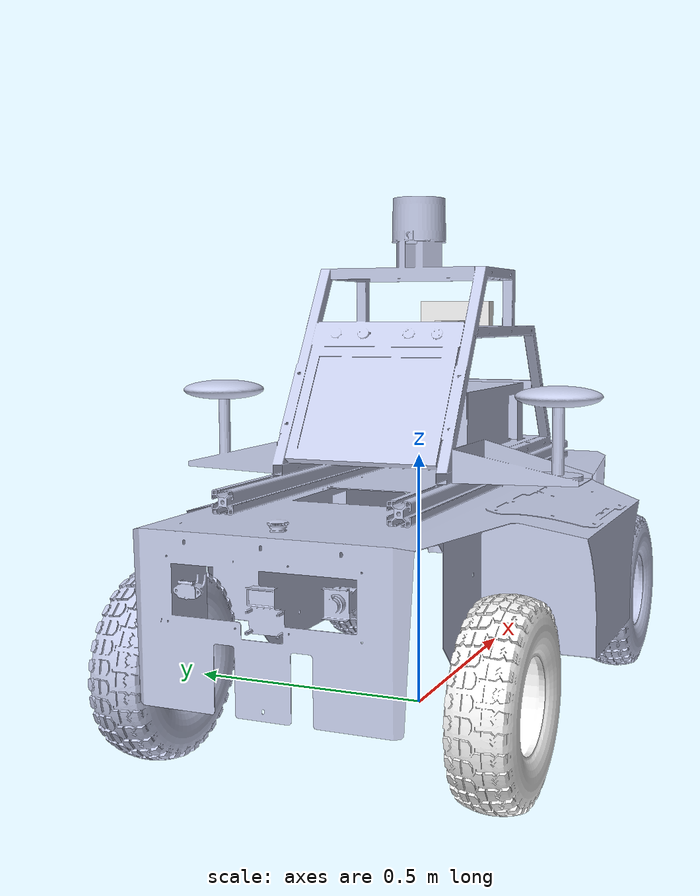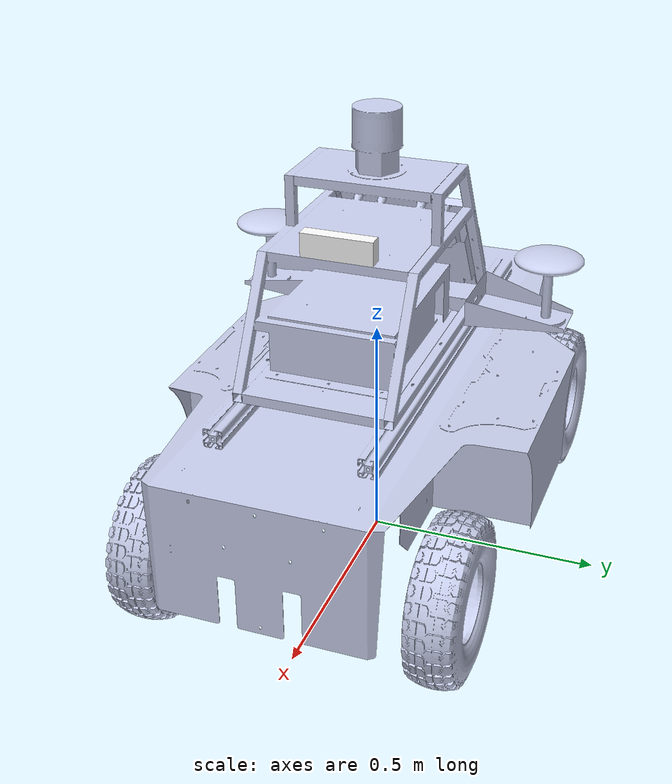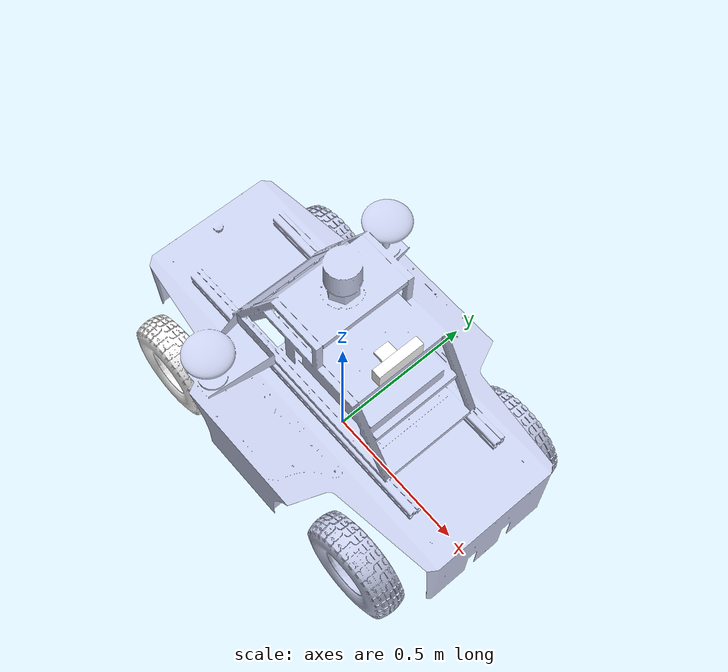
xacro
<robot name="mycar" xmlns:xacro="http://wiki.ros.org/xacro">
<gazebo>
    <plugin name="gazebo_ros_control"  filename="libgazebo_ros_control.so">
      <robotSimType>steer_bot_hardware_gazebo/SteerBotHardwareGazebo</robotSimType>
      <legacyModeNS>false</legacyModeNS>
    </plugin>
  </gazebo>
  <link
    name="base_link">
    <inertial>
      <origin
        xyz="-0.0070857 -0.00022102 0.54657"
        rpy="0 0 0" />
      <mass
        value="15.051" />
      <inertia
        ixx="0.11965"
        ixy="-1.6769E-06"
        ixz="-0.0034836"
        iyy="0.29664"
        iyz="-2.1065E-06"
        izz="0.36527" />
    </inertial>
    <visual>
      <origin
        xyz="0 0 0"
        rpy="0 0 0" />
      <geometry>
        <mesh
          filename="package://test9/meshes/base_link.STL" />
      </geometry>
      <material
        name="">
        <color
          rgba="0.79216 0.81961 0.93333 1" />
      </material>
    </visual>
    <collision>
      <origin
        xyz="0 0 0"
        rpy="0 0 0" />
      <geometry>
        <mesh
          filename="package://test9/meshes/base_link.STL" />
      </geometry>
    </collision>
  </link>
  <link
    name="front_steer_link">
    <inertial>
      <origin
        xyz="1.1102E-16 -1.3587E-18 -0.000375"
        rpy="0 0 0" />
      <mass
        value="2.0944E-06" />
      <inertia
        ixx="5.4323E-13"
        ixy="-1.0771E-28"
        ixz="-1.0797E-27"
        iyy="5.4323E-13"
        iyz="1.0693E-27"
        izz="8.3776E-13" />
    </inertial>
    <visual>
      <origin
        xyz="0 0 0"
        rpy="0 0 0" />
      <geometry>
        <mesh
          filename="package://test9/meshes/front_steer_link.STL" />
      </geometry>
      <material
        name="">
        <color
          rgba="1 1 1 1" />
      </material>
    </visual>
    <collision>
      <origin
        xyz="0 0 0"
        rpy="0 0 0" />
      <geometry>
        <mesh
          filename="package://test9/meshes/front_steer_link.STL" />
      </geometry>
    </collision>
  </link>
  <joint
    name="front_steer_joint"
    type="revolute">
    <origin
      xyz="0.42 0 0"
      rpy="0 0 0" />
    <parent
      link="base_link" />
    <child
      link="front_steer_link" />
    <axis
      xyz="0 0 1" />
    <limit
      lower="-0.72"
      upper="0.72"
      effort="0"
      velocity="0" />
  </joint>
  <link
    name="front_steer_left_link">
    <inertial>
      <origin xyz="9.44636555644252E-08 -0.000295273745285485 -8.13046296954667E-11" rpy="0 0 0" />
      <mass value="0.296315811300368" />
      <inertia
        ixx="0.000374692013709393"
        ixy="-9.17172260383823E-08"
        ixz="-2.43187512356516E-12"
        iyy="0.000661029987747155"
        iyz="1.9736939507106E-13"
        izz="0.000374691963930348" />
    </inertial>
   <visual>
     <geometry>
       <cylinder length="0.001" radius="0.005"/>
     </geometry>
     <origin rpy="0 0 0"  xyz="0 0 0" />
   </visual>
    <collision>
      <origin xyz="0 0 0" rpy="0 0 0" />
      <geometry>
       <cylinder length="0.001" radius="0.005"/>
      </geometry>
    </collision>

  </link>
  <joint
    name="front_steer_left_joint"
    type="revolute">
    <origin rpy="0 0 0"  xyz="0.42 0.3 0.26937" />
    <parent link="base_link" />
    <child link="front_steer_left_link" />
    <axis xyz="0 0 1" />  <!-- charge steer direction default is 0 0 1-->
    <limit lower="-0.61" upper="0.61" effort="0" velocity="0" />
  </joint>
  <link
    name="front_left_wheel_link">
    <inertial>
      <origin
        xyz="-1.6252E-08 1.9746E-07 -4.9513E-09"
        rpy="0 0 0" />
      <mass
        value="2.3611" />
      <inertia
        ixx="0.025953"
        ixy="3.9277E-10"
        ixz="-1.096E-12"
        iyy="0.045436"
        iyz="9.5777E-09"
        izz="0.025953" />
    </inertial>
    <visual>
      <origin
        xyz="0 0 0"
        rpy="0 0 0" />
      <geometry>
        <mesh
          filename="package://test9/meshes/front_left_wheel_link.STL" />
      </geometry>
      <material
        name="">
        <color
          rgba="0.79216 0.81961 0.93333 1" />
      </material>
    </visual>
    <collision>
      <origin
        xyz="0 0 0"
        rpy="0 0 0" />
      <geometry>
        <mesh
          filename="package://test9/meshes/front_left_wheel_link.STL" />
      </geometry>
    </collision>
  </link>
  <joint
    name="front_left_wheel_joint"
    type="continuous">
    <origin
      xyz="0 0 -0.1"
      rpy="0 0 0" />
    <parent
      link="front_steer_left_link" />
    <child
      link="front_left_wheel_link" />
    <axis
      xyz="0 1 0" />
  </joint>
  <link
    name="front_steer_right_link">
    <inertial>
      <origin xyz="9.44636555644252E-08 -0.000295273745285485 -8.13046296954667E-11" rpy="0 0 0" />
      <mass value="0.296315811300368" />
      <inertia
        ixx="0.000374692013709393"
        ixy="-9.17172260383823E-08"
        ixz="-2.43187512356516E-12"
        iyy="0.000661029987747155"
        iyz="1.9736939507106E-13"
        izz="0.000374691963930348" />
    </inertial>
   <visual>
     <geometry>
       <cylinder length="0.001" radius="0.005"/>
     </geometry>
     <origin rpy="0 0 0"  xyz="0 0 0" />
     <material name="">
          <color rgba="0.792156862745098 0.819607843137255 0.933333333333333 1" />
     </material>
   </visual>
   <collision>
      <origin
        xyz="0 0 0"
        rpy="0 0 0" />
      <geometry>
       <cylinder length="0.001" radius="0.005"/>
      </geometry>
    </collision>

  </link>
  <joint
    name="front_steer_right_joint"
    type="revolute">
    <origin rpy="0 0 0"  xyz="0.42 -0.31 0.26937" />
    <parent link="base_link" />
    <child link="front_steer_right_link" />
    <axis xyz="0 0 1" />     <!-- charge steer direction default is 0 0 1-->
    <limit lower="-0.61" upper="0.61" effort="0" velocity="0" />
  </joint>
  <link
    name="front_right_wheel_link">
    <inertial>
      <origin
        xyz="1.6252E-08 -1.9746E-07 -4.9515E-09"
        rpy="0 0 0" />
      <mass
        value="2.3611" />
      <inertia
        ixx="0.025953"
        ixy="3.9279E-10"
        ixz="9.4373E-13"
        iyy="0.045436"
        iyz="-9.5777E-09"
        izz="0.025953" />
    </inertial>
    <visual>
      <origin
        xyz="0 0 0"
        rpy="0 0 0" />
      <geometry>
        <mesh
          filename="package://test9/meshes/front_right_wheel_link.STL" />
      </geometry>
      <material
        name="">
        <color
          rgba="0.79216 0.81961 0.93333 1" />
      </material>
    </visual>
    <collision>
      <origin
        xyz="0 0 0"
        rpy="0 0 0" />
      <geometry>
        <mesh
          filename="package://test9/meshes/front_right_wheel_link.STL" />
      </geometry>
    </collision>
  </link>
  <joint
    name="front_right_wheel_joint"
    type="continuous">
    <origin
      xyz="0 0 -0.1"
      rpy="0 0 0" />
    <parent
      link="front_steer_right_link" />
    <child
      link="front_right_wheel_link" />
    <axis
      xyz="0 1 0" />
  </joint>
  <link
    name="rear_wheel_link ">
    <inertial>
      <origin
        xyz="-5.5511E-17 -1.3587E-18 -0.000375"
        rpy="0 0 0" />
      <mass
        value="2.0944E-06" />
      <inertia
        ixx="5.4323E-13"
        ixy="-1.0771E-28"
        ixz="-1.0797E-27"
        iyy="5.4323E-13"
        iyz="1.0693E-27"
        izz="8.3776E-13" />
    </inertial>
    <visual>
      <origin
        xyz="0 0 0"
        rpy="0 0 0" />
      <geometry>
        <mesh
          filename="package://test9/meshes/rear_wheel_link .STL" />
      </geometry>
      <material
        name="">
        <color
          rgba="1 1 1 1" />
      </material>
    </visual>
    <collision>
      <origin
        xyz="0 0 0"
        rpy="0 0 0" />
      <geometry>
        <mesh
          filename="package://test9/meshes/rear_wheel_link .STL" />
      </geometry>
    </collision>
  </link>
  <joint
    name="rear_wheel_joint"
    type="continuous">
    <origin
      xyz="-0.42 0 0.16937"
      rpy="0 0 0" />
    <parent
      link="base_link" />
    <child
      link="rear_wheel_link " />
    <axis
      xyz="0 1 0" />
  </joint>
  <link
    name="camera">
    <inertial>
      <origin
        xyz="0.015 -1.4324E-16 2.2204E-15"
        rpy="0 0 0" />
      <mass
        value="0.225" />
      <inertia
        ixx="0.00046875"
        ixy="-4.2534E-18"
        ixz="1.1402E-19"
        iyy="6.375E-05"
        iyz="1.3093E-18"
        izz="0.00043875" />
    </inertial>
    <visual>
      <origin
        xyz="0 0 0"
        rpy="0 0 0" />
      <geometry>
        <mesh
          filename="package://test9/meshes/camera.STL" />
      </geometry>
      <material
        name="">
        <color
          rgba="1 1 1 1" />
      </material>
    </visual>
    <collision>
      <origin
        xyz="0 0 0"
        rpy="0 0 0" />
      <geometry>
        <mesh
          filename="package://test9/meshes/camera.STL" />
      </geometry>
    </collision>
  </link>
  <joint
    name="camera_joint"
    type="fixed">
    <origin
      xyz="0.20158 0 0.77527"
      rpy="0 0 0" />
    <parent
      link="base_link" />
    <child
      link="camera" />
    <axis
      xyz="0 0 0" />
  </joint>
  <link
    name="imu">
    <inertial>
      <origin
        xyz="-2.276E-15 1.7457E-17 0.005"
        rpy="0 0 0" />
      <mass
        value="0.025" />
      <inertia
        ixx="5.4167E-06"
        ixy="2.7218E-22"
        ixz="-1.8636E-20"
        iyy="5.4167E-06"
        iyz="1.7413E-20"
        izz="1.0417E-05" />
    </inertial>
    <visual>
      <origin
        xyz="0 0 0"
        rpy="0 0 0" />
      <geometry>
        <mesh
          filename="package://test9/meshes/imu.STL" />
      </geometry>
      <material
        name="">
        <color
          rgba="1 1 1 1" />
      </material>
    </visual>
    <collision>
      <origin
        xyz="0 0 0"
        rpy="0 0 0" />
      <geometry>
        <mesh
          filename="package://test9/meshes/imu.STL" />
      </geometry>
    </collision>
  </link>
  <joint
    name="imu_joint"
    type="fixed">
    <origin
      xyz="0.17658 0 0.75027"
      rpy="0 0 0" />
    <parent
      link="base_link" />
    <child
      link="imu" />
    <axis
      xyz="0 0 0" />
  </joint>
  <link
    name="left_rear_link">
    <inertial>
      <origin
        xyz="-1.6252E-08 1.9746E-07 -4.9512E-09"
        rpy="0 0 0" />
      <mass
        value="2.3611" />
      <inertia
        ixx="0.025953"
        ixy="3.9266E-10"
        ixz="-8.3216E-13"
        iyy="0.045436"
        iyz="9.5777E-09"
        izz="0.025953" />
    </inertial>
    <visual>
      <origin
        xyz="0 0 0"
        rpy="0 0 0" />
      <geometry>
        <mesh
          filename="package://test9/meshes/left_rear_link.STL" />
      </geometry>
      <material
        name="">
        <color
          rgba="0.79216 0.81961 0.93333 1" />
      </material>
    </visual>
    <collision>
      <origin
        xyz="0 0 0"
        rpy="0 0 0" />
      <geometry>
        <mesh
          filename="package://test9/meshes/left_rear_link.STL" />
      </geometry>
    </collision>
  </link>
  <joint
    name="left_rear_joint"
    type="continuous">
    <origin
      xyz="-0.42 0.31 0.16937"
      rpy="0 0 0" />
    <parent
      link="base_link" />
    <child
      link="left_rear_link" />
    <axis
      xyz="0 1 0" />
    <limit
      lower="-3.14"
      upper="3.14"
      effort="0"
      velocity="0" />
  </joint>
  <link
    name="right_rear_link">
    <inertial>
      <origin
        xyz="1.6252E-08 -1.9746E-07 -4.9512E-09"
        rpy="0 0 0" />
      <mass
        value="2.3611" />
      <inertia
        ixx="0.025953"
        ixy="3.9279E-10"
        ixz="9.4373E-13"
        iyy="0.045436"
        iyz="-9.5777E-09"
        izz="0.025953" />
    </inertial>
    <visual>
      <origin
        xyz="0 0 0"
        rpy="0 0 0" />
      <geometry>
        <mesh
          filename="package://test9/meshes/right_rear_link.STL" />
      </geometry>
      <material
        name="">
        <color
          rgba="1 1 1 1" />
      </material>
    </visual>
    <collision>
      <origin
        xyz="0 0 0"
        rpy="0 0 0" />
      <geometry>
        <mesh
          filename="package://test9/meshes/right_rear_link.STL" />
      </geometry>
    </collision>
  </link>
  <joint
    name="right_rear_joint"
    type="continuous">
    <origin
      xyz="-0.42 -0.31 0.16937"
      rpy="0 0 0" />
    <parent
      link="base_link" />
    <child
      link="right_rear_link" />
    <axis
      xyz="0 1 0" />
    <limit
      lower="-3.14"
      upper="3.14"
      effort="0"
      velocity="0" />
  </joint>
      <!--add color for links -->
  <gazebo reference="base_link">
    <material>Gazebo/DarkGrey </material>
  </gazebo>

  <gazebo reference="front_steer_left_link">
    <material>Gazebo/Road</material>
  </gazebo>

  <gazebo reference="front_steer_right_link">
    <material>Gazebo/Road</material>
  </gazebo>

  <gazebo reference="front_left_wheel_link">
    <material>Gazebo/Road</material>
  </gazebo>

  <gazebo reference="front_right_wheel_link">
    <material>Gazebo/Road</material>
  </gazebo>

  <gazebo reference="left_rear_link">
    <material>Gazebo/Road</material>
  </gazebo>

  <gazebo reference="right_rear_link">
    <material>Gazebo/Road</material>
  </gazebo>

   <gazebo reference="camera">
    <material>Gazebo/Black</material>
  </gazebo>

  <gazebo reference="imu">
    <material>Gazebo/Black</material>
  </gazebo>

    <gazebo reference="camera">
      <sensor type="depth" name="camera">
        <always_on>true</always_on>
        <update_rate>20.0</update_rate>
        <camera>
          <horizontal_fov>60.0*3.1415927/180.0</horizontal_fov>
          <horizontal_fov>1.047197567</horizontal_fov>
          <image>
            <format>R8G8B8</format>
            <width>640</width>
            <height>480</height>
          </image>
          <clip>
            <near>0.05</near>
            <far>30</far>
          </clip>
        </camera>
        <plugin name="kinect_camera_controller" filename="libgazebo_ros_openni_kinect.so">
          <cameraName>camera</cameraName>
          <alwaysOn>true</alwaysOn>
          <updateRate>10</updateRate>
          <imageTopicName>rgb/image_raw</imageTopicName>
          <depthImageTopicName>depth/image_raw</depthImageTopicName>
          <pointCloudTopicName>depth/points</pointCloudTopicName>
          <cameraInfoTopicName>rgb/camera_info</cameraInfoTopicName>
          <depthImageCameraInfoTopicName>depth/camera_info</depthImageCameraInfoTopicName>
          <frameName>camera</frameName>
          <baseline>0.1</baseline>
          <distortion_k1>0.0</distortion_k1>
          <distortion_k2>0.0</distortion_k2>
          <distortion_k3>0.0</distortion_k3>
          <distortion_t1>0.0</distortion_t1>
          <distortion_t2>0.0</distortion_t2>
          <pointCloudCutoff>0.4</pointCloudCutoff>
        </plugin>
      </sensor>
    </gazebo>

    <gazebo reference="imu">
    <gravity>true</gravity>
    <sensor name="imu_sensor" type="imu">
      <always_on>true</always_on>
      <update_rate>100</update_rate>
      <visualize>true</visualize>
      <topic>__default_topic__</topic>
      <plugin filename="libgazebo_ros_imu_sensor.so" name="imu_plugin">
        <topicName>imu</topicName>
        <bodyName>imu</bodyName>
        <updateRateHZ>10.0</updateRateHZ>
        <gaussianNoise>0.0</gaussianNoise>
        <xyzOffset>0 0 0</xyzOffset>
        <rpyOffset>0 0 0</rpyOffset>
        <frameName>imu</frameName>
        <initialOrientationAsReference>false</initialOrientationAsReference>
      </plugin>
      <pose>0 0 0 0 0 0</pose>
    </sensor>
  </gazebo>

</robot>
